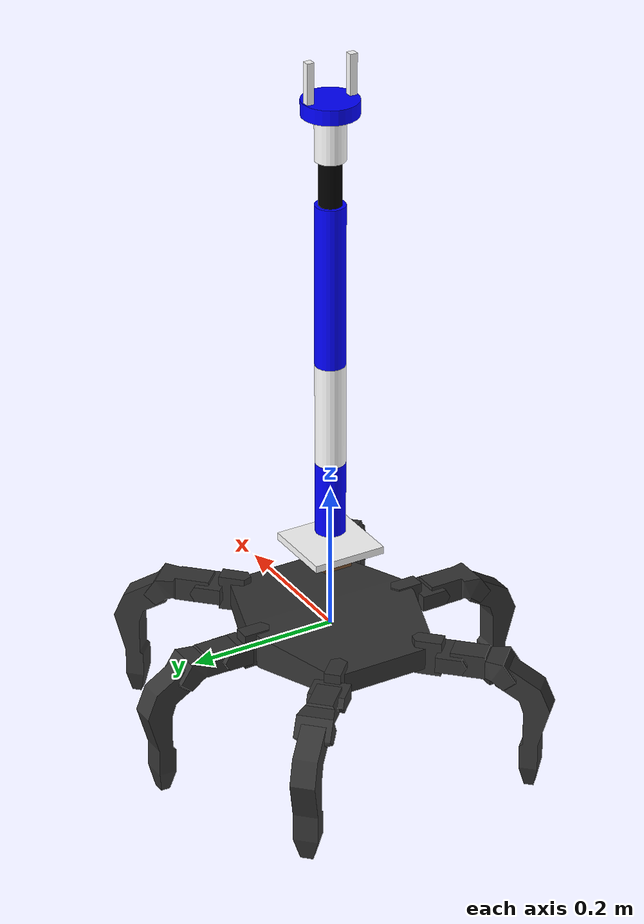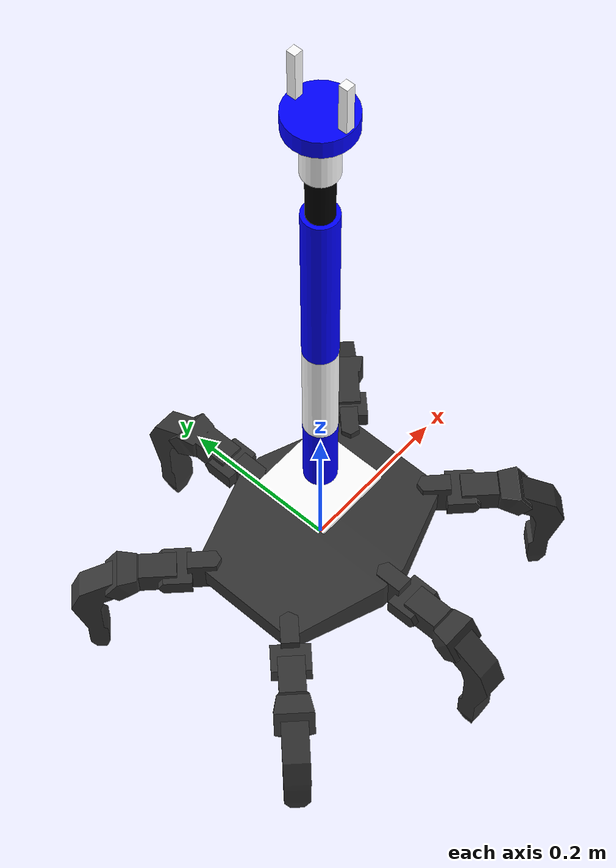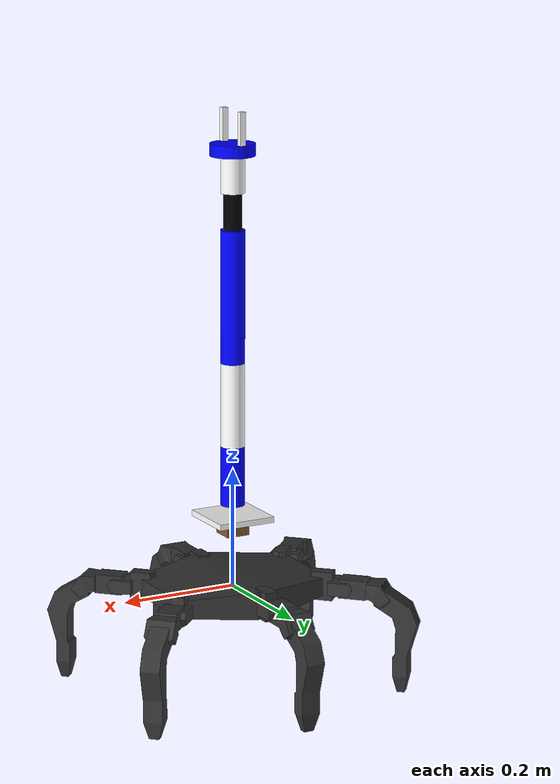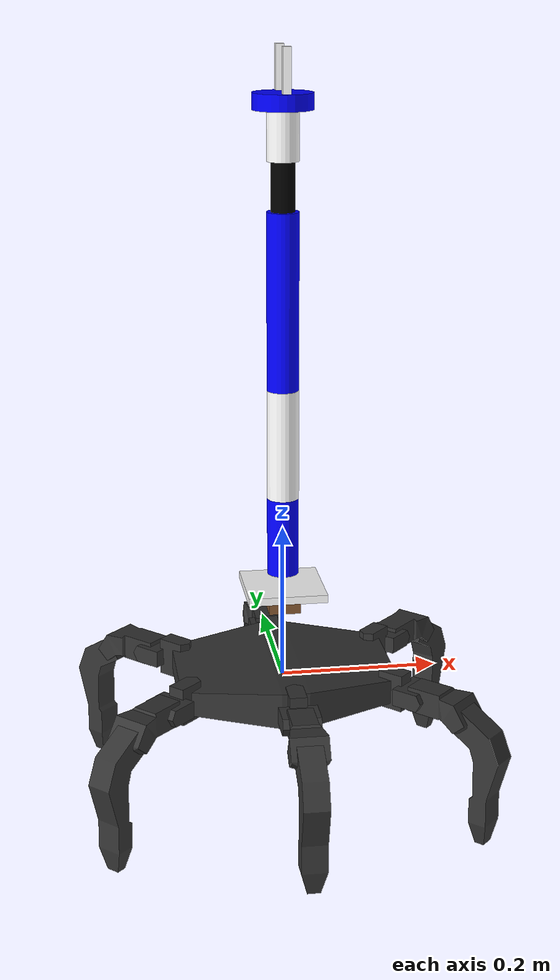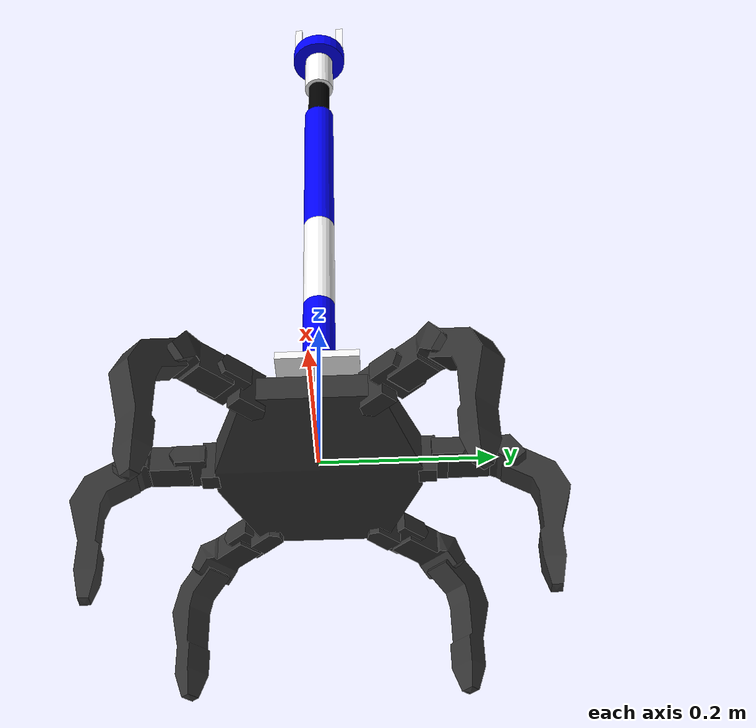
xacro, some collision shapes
<?xml version="1.0"?>
<robot name="phantomx" xmlns:xacro="http://www.ros.org/wiki/xacro">

	<xacro:include filename="$(find phantomx_description)/urdf/phantomx.xacro" />
	<xacro:include filename="$(find phantomx_description)/urdf/arm.xacro" />
    <xacro:include filename="$(find phantomx_description)/urdf/kinect.xacro" />

	<xacro:property name="kinect_offset_x" value="0" />
	<xacro:property name="kinect_offset_y" value="0" />
	<xacro:property name="kinect_offset_z" value="0.05" />

  <joint name="kinect_frame_joint" type="fixed">
	  <origin xyz="${kinect_offset_x} ${kinect_offset_y} ${kinect_offset_z}" rpy="0 0 0" />
	  <parent link="MP_BODY"/>
	  <child link="camera_link"/>
	</joint>
	<xacro:kinect_camera prefix="camera"/>

	<joint name="arm_base" type="fixed">
        <parent link="phantomx_base_link"/>
        <child link="base_link"/>
        <origin xyz="0 0 0.12" rpy="0 0 0" />
  </joint>

    <gazebo>

    <plugin filename="libgazebo_ros_control.so" name="gazebo_ros_control">
      <robotNamespace>/phantomx</robotNamespace>
    </plugin>

    <plugin name="p3d_base_controller" filename="libgazebo_ros_p3d.so">
    <alwaysOn>true</alwaysOn>
    <updateRate>50.0</updateRate>
    <bodyName>MP_BODY</bodyName>
    <topicName>odom</topicName>
    <gaussianNoise>0.0</gaussianNoise>
    <frameName>world</frameName>
    <xyzOffsets>0 0 0</xyzOffsets>
    <rpyOffsets>0 0 0</rpyOffsets>
    </plugin>

    </gazebo>

</robot>

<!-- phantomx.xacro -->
<robot name="PhantomX"  xmlns:xacro="http://www.ros.org/wiki/xacro">

  <xacro:include filename="$(find phantomx_description)/urdf/phantomx_urdf.xacro" />

  <link name="phantomx_base_link"/>

    <xacro:phantomx parent="phantomx_base_link">
        <origin xyz="0 0 0" rpy="0 0 0" />
    </xacro:phantomx>

</robot>

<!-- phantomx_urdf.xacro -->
<robot xmlns:xacro="http://www.ros.org/wiki/xacro">

    <xacro:property name="connect_offset" value="0.02633"/>
    <xacro:property name="thigh_offset_y" value="-0.0645"/>
    <xacro:property name="thigh_offset_z" value="-0.0145"/>

    <xacro:macro name="phantomx" params="parent *origin">

        <joint name="j_phantomx_attachment" type="fixed">
            <parent link="${parent}"/>
            <child link="MP_BODY"/>
            <insert_block name="origin"/>
        </joint>

        <link name="MP_BODY">
            <inertial>
                <origin xyz="0 0 0"/>
                <mass value="0.97559947"/>
                <inertia ixx="3.1081800" ixy="-0.25460189" ixz="2.0318174" iyy="6.3787776" iyz="0.16417863"
                         izz="5.3316425"/>
            </inertial>
            <visual>
                <origin xyz="0 0 0" rpy="0 0 0"/>
                <geometry>
                    <mesh filename="package://phantomx_description/meshes/body.STL" scale="1 1 1"/>
                </geometry>
                <material name="Grey">
                    <color rgba="0.20 0.20 0.20 1.0"/>
                </material>
            </visual>
            <collision>
                <origin xyz="0 0 0" rpy="0 0 0"/>
                <geometry>
                    <mesh filename="package://phantomx_description/meshes/body_coll.STL" scale="1 1 1"/>
                </geometry>

            </collision>
        </link>

        <gazebo reference="MP_BODY">
            <material>Gazebo/Grey</material>
        </gazebo>

        <xacro:leg_l xyz="0.1248 -0.06164  0.001116" rpy="0 4.7123 0.7853981633974483" suffix="rf"/>
        <xacro:leg_l xyz="0 -0.1034  0.001116" rpy="0 4.7123 0" suffix="rm"/>
        <xacro:leg_l xyz="-0.1248 -0.06164  0.001116" rpy="0 4.7123 -0.7853981633974483" suffix="rr"/>

        <xacro:leg_l xyz="0.1248 0.06164  0.001116" rpy="0 4.7123 2.356194490192345" suffix="lf"/>
        <xacro:leg_l xyz="0 0.1034  0.001116" rpy="0 4.7123 3.14159" suffix="lm"/>
        <xacro:leg_l xyz="-0.1248 0.06164  0.001116" rpy="0 4.7123 3.9269908169872414" suffix="lr"/>

    </xacro:macro>

    <xacro:macro name="leg_l" params="xyz rpy suffix">

        <link name="c1_${suffix}">
            <inertial>
                <origin xyz="0 -${connect_offset} 0" rpy="0 0 0"/>
                <mass value="0.324357719"/>
                <inertia ixx="0.0051411124" ixy="-0.00057530255" ixz="-0.000024729049" iyy="0.0081915737"
                         iyz="-0.000019223094" izz="0.0011379812"/>
            </inertial>
            <visual>
                <origin xyz="0 -0.0252 0" rpy="0 0 0"/>
                <geometry>
                    <!--box size="0.045 0.022 0.0325" /-->
                    <mesh filename="package://phantomx_description/meshes/connect.STL" scale="1 1 1"/>
                </geometry>
                <material name="Grey">
                    <color rgba="0.20 0.20 0.20 1.0"/>
                </material>
            </visual>
            <collision>
                <origin xyz="0 -${connect_offset} 0" rpy="0 0 0"/>
                <geometry>
                    <mesh filename="package://phantomx_description/meshes/connect_coll.STL" scale="1 1 1"/>
                </geometry>
            </collision>
        </link>

        <gazebo reference="c1_${suffix}">
            <dampingFactor>0.0005</dampingFactor>
        </gazebo>

        <link name="c2_${suffix}">
            <inertial>
                <origin xyz="0 -${connect_offset} 0" rpy="0 0 0"/>
                <mass value="0.324357719"/>
                <inertia ixx="0.0051411124" ixy="-0.00057530255" ixz="-0.000024729049" iyy="0.0081915737"
                         iyz="-0.000019223094" izz="0.0011379812"/>
            </inertial>
            <visual>
                <origin xyz="0 -0.0252 0" rpy="0 0 0"/>
                <geometry>
                    <!--box size="0.045 0.022 0.0325" /-->
                    <mesh filename="package://phantomx_description/meshes/connect.STL" scale="1 1 1"/>
                </geometry>
                <material name="Grey">
                    <color rgba="0.20 0.20 0.20 1.0"/>
                </material>
            </visual>
            <collision>
                <origin xyz="0 -${connect_offset} 0" rpy="0 0 0"/>
                <geometry>
                    <mesh filename="package://phantomx_description/meshes/connect_coll.STL" scale="1 1 1"/>
                </geometry>
            </collision>
        </link>

        <gazebo reference="c2_${suffix}">
            <dampingFactor>0.0005</dampingFactor>
        </gazebo>

        <link name="thigh_${suffix}">
            <inertial>
                <origin xyz="0 0 0" rpy="0 0 0"/>
                <mass value="0.324357719"/>
                <inertia ixx="0.0051411124" ixy="-0.00057530255" ixz="-0.000024729049" iyy="0.0081915737"
                         iyz="-0.000019223094" izz="0.0011379812"/>
            </inertial>
            <visual>
                <origin xyz="0 0 0" rpy="0 0 0"/>
                <geometry>
                    <mesh filename="package://phantomx_description/meshes/thigh_l.STL" scale="1 1 1"/>
                </geometry>
                <material name="Grey">
                    <color rgba="0.20 0.20 0.20 1.0"/>
                </material>
            </visual>
            <collision>
                <origin xyz="0 0 0" rpy="0 0 0"/>
                <geometry>
                    <mesh filename="package://phantomx_description/meshes/thigh_l_coll.STL" scale="1 1 1"/>
                </geometry>
            </collision>
        </link>

        <gazebo reference="thigh_${suffix}">
            <dampingFactor>0.0005</dampingFactor>
        </gazebo>

        <link name="tibia_${suffix}">
            <inertial>
                <origin xyz="0 0 0" rpy="0 0 0"/>
                <mass value="0.324357719"/>
                <inertia ixx="0.0051411124" ixy="-0.00057530255" ixz="-0.000024729049" iyy="0.0081915737"
                         iyz="-0.000019223094" izz="0.0011379812"/>
            </inertial>
            <visual>
                <origin xyz="0 0 0" rpy="0 0 0"/>
                <geometry>
                    <mesh filename="package://phantomx_description/meshes/tibia_l.STL" scale="1 1 1"/>
                </geometry>
                <material name="Grey">
                    <color rgba="0.20 0.20 0.20 1.0"/>
                </material>
            </visual>
            <collision>
                <origin xyz="0 0 0" rpy="0 0 0"/>
                <geometry>
                    <mesh filename="package://phantomx_description/meshes/tibia_l_coll.STL" scale="1 1 1"/>
                </geometry>
            </collision>
        </link>

        <gazebo reference="tibia_${suffix}">
            <mu1>50.0</mu1>
            <mu2>50.0</mu2>
            <fdir1>0.000000 0.000000 0.000000</fdir1>
            <kp>500000.0</kp>
            <kd>10.0</kd>
            <maxVel>0.00</maxVel>
            <minDepth>0.001</minDepth>
            <dampingFactor>0.0005</dampingFactor>
            <selfCollide>1</selfCollide>
        </gazebo>

        <joint name="j_c1_${suffix}" type="revolute">
            <parent link="MP_BODY"/>
            <child link="c1_${suffix}"/>
            <origin xyz="${xyz}" rpy="${rpy}"/>
            <axis xyz="1 0 0"/>
            <limit effort="2.8" velocity="5.6548668" lower="-2.6179939" upper="2.6179939"/>
        </joint>

        <joint name="j_c2_${suffix}" type="fixed">
            <parent link="c1_${suffix}"/>
            <child link="c2_${suffix}"/>
            <origin xyz="0 -0.054 0" rpy="0 1.5704 3.14159"/>
        </joint>

        <joint name="j_thigh_${suffix}" type="revolute">
            <parent link="c2_${suffix}"/>
            <child link="thigh_${suffix}"/>
            <origin xyz="0 0 0" rpy=" 0 3.14159 3.14159"/>
            <axis xyz="1 0 0"/>
            <limit effort="2.8" velocity="5.6548668" lower="-2.6179939" upper="2.6179939"/>
        </joint>

        <joint name="j_tibia_${suffix}" type="revolute">
            <parent link="thigh_${suffix}"/>
            <child link="tibia_${suffix}"/>
            <origin xyz="0 ${thigh_offset_y} ${thigh_offset_z}" rpy="-1.5707 0 3.14159"/>
            <axis xyz="1 0 0"/>
            <limit effort="2.8" velocity="5.6548668" lower="-2.6179939" upper="2.6179939"/>
        </joint>

        <transmission name="t_c1_${suffix}">
            <type>transmission_interface/SimpleTransmission</type>
            <joint name="j_c1_${suffix}">
                <hardwareInterface>hardware_interface/EffortJointInterface</hardwareInterface>
            </joint>
            <actuator name="m_c1_${suffix}">
                <hardwareInterface>hardware_interface/EffortJointInterface</hardwareInterface>
                <mechanicalReduction>1</mechanicalReduction>
            </actuator>
        </transmission>

        <transmission name="t_thigh_${suffix}">
            <type>transmission_interface/SimpleTransmission</type>
            <joint name="j_thigh_${suffix}">
                <hardwareInterface>hardware_interface/EffortJointInterface</hardwareInterface>
            </joint>
            <actuator name="m_thigh_${suffix}">
                <hardwareInterface>hardware_interface/EffortJointInterface</hardwareInterface>
                <mechanicalReduction>1</mechanicalReduction>
            </actuator>
        </transmission>

        <transmission name="t_tibia_${suffix}">
            <type>transmission_interface/SimpleTransmission</type>
            <joint name="j_tibia_${suffix}">
                <hardwareInterface>hardware_interface/EffortJointInterface</hardwareInterface>
            </joint>
            <actuator name="m_tibia_${suffix}">
                <hardwareInterface>hardware_interface/EffortJointInterface</hardwareInterface>
                <mechanicalReduction>1</mechanicalReduction>
            </actuator>
        </transmission>

        <gazebo reference="c1_${suffix}">
            <material>Gazebo/Grey</material>
        </gazebo>

        <gazebo reference="c2_${suffix}">
            <material>Gazebo/Grey</material>
        </gazebo>

        <gazebo reference="thigh_${suffix}">
            <material>Gazebo/Grey</material>
        </gazebo>

        <gazebo reference="tibia_${suffix}">
            <material>Gazebo/Grey</material>
        </gazebo>

    </xacro:macro>

</robot>

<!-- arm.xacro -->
<robot name="arm" xmlns:xacro="http://ros.org/wiki/xacro">

    <!-- Defining the colors used in this robot -->
    <material name="Black">
        <color rgba="0 0 0 1"/>
    </material>

    <material name="White">
        <color rgba="1 1 1 1"/>
    </material>

    <material name="Blue">
        <color rgba="0 0 1 1"/>
    </material>

    <material name="Red">
        <color rgba="1 0 0 1"/>
    </material>

    <!-- Constants -->
    <xacro:property name="M_PI" value="3.14159"/>

    <!-- link1 properties -->
    <xacro:property name="link1_width" value="0.02" />
    <xacro:property name="link1_len" value="0.10" />

    <!-- link2 properties -->
    <xacro:property name="link2_width" value="0.02" />
    <xacro:property name="link2_len" value="0.14" />

    <!-- link3 properties -->
    <xacro:property name="link3_width" value="0.02" />
    <xacro:property name="link3_len" value="0.22" />

    <!-- link4 properties -->
    <xacro:property name="link4_width" value="0.015" />
    <xacro:property name="link4_len" value="0.06" />

    <!-- link5 properties -->
    <xacro:property name="link5_width" value="0.02" />
    <xacro:property name="link5_len" value="0.06" />

    <!-- link6 properties -->
    <xacro:property name="link6_width" value="0.037" />
    <xacro:property name="link6_len" value="0.02" />

    <!-- Left gripper -->
    <xacro:property name="left_gripper_len" value="0.068" />
    <xacro:property name="left_gripper_width" value="0.01" />
    <xacro:property name="left_gripper_height" value="0.01" />

    <!-- Right gripper -->
    <xacro:property name="right_gripper_len" value="0.068" />
    <xacro:property name="right_gripper_width" value="0.01" />
    <xacro:property name="right_gripper_height" value="0.01" />

    <!-- Gripper frame -->
    <xacro:property name="grasp_frame_radius" value="0.001" />

    <!-- Inertial matrix -->
    <xacro:macro name="inertial_matrix" params="mass">
        <inertial>
            <mass value="${mass}" />
            <inertia ixx="1.0" ixy="0.0" ixz="0.0" iyy="0.5" iyz="0.0" izz="1.0" />
        </inertial>
    </xacro:macro>

    <!-- ///////////////////////////////////////   bottom_joint   ////////////////////////////////////////// -->
    <joint name="bottom_joint" type="fixed">
        <origin xyz="0 0 0" rpy="0 0 0" />
        <parent link="base_link"/>
        <child link="bottom_link"/>
    </joint>
    <link name="bottom_link">
        <visual>
              <origin xyz=" 0 0 -0.02"  rpy="0 0 0"/>
                  <geometry>
                       <box size="0.04 0.04 0.02" />
                  </geometry>
              <material name="Brown" />
        </visual>
        <collision>
            <origin xyz=" 0 0 -0.02"  rpy="0 0 0"/>
            <geometry>
                <box size="0.06 0.06 0.02" />
            </geometry>
        </collision>
        <xacro:inertial_matrix mass="0.02"/>
    </link>

    <!-- /////////////////////////////////////   BASE LINK    ////////////////////////////////////////////// -->
    <link name="base_link">
        <visual>
            <origin xyz="0 0 0" rpy="0 0 0" />
            <geometry>
                <box size="0.1 0.1 0.01" />
            </geometry>
            <material name="White" />
        </visual>
        <collision>
            <origin xyz="0 0 0" rpy="0 0 0" />
            <geometry>
                <box size="0.05 0.05 0.01" />
            </geometry>
        </collision>
        <xacro:inertial_matrix mass="0.02"/>
    </link>

    <joint name="joint1" type="revolute">
        <parent link="base_link"/>
        <child link="link1"/>
        <origin xyz="0 0 0.02" rpy="0 ${M_PI/2} 0" />
        <axis xyz="-1 0 0" />
        <limit effort="300" velocity="1" lower="-2.96" upper="2.96"/>
        <dynamics damping="50" friction="1"/>
    </joint>

    <!-- /////////////////////////////////////   LINK1  ////////////////////////////////////////////// -->
    <link name="link1" >
        <visual>
            <origin xyz="-${link1_len/2} 0 0" rpy="0 ${M_PI/2} 0" />
            <geometry>
                <cylinder radius="${link1_width}" length="${link1_len}"/>
            </geometry>
            <material name="Blue" />
        </visual>
        <collision>
            <origin xyz="-${link1_len/2} 0 0" rpy="0 ${M_PI/2} 0" />
            <geometry>
                <cylinder radius="${link1_width}" length="${link1_len}"/>
            </geometry>
        </collision>
        <xacro:inertial_matrix mass="0.02"/>
    </link>

    <joint name="joint2" type="revolute">
        <parent link="link1"/>
        <child link="link2"/>
        <origin xyz="-${link1_len} 0 0.0" rpy="-${M_PI/2} 0 ${M_PI/2}" />
        <axis xyz="1 0 0" />
        <limit effort="300" velocity="1" lower="-2.35" upper="2.35" />
        <dynamics damping="50" friction="1"/>
    </joint>

    <!-- ///////////////////////////////////////   LINK2  ////////////////////////////////////////////// -->
    <link name="link2" >
        <visual>
            <origin xyz="0 0 ${link2_len/2}" rpy="0 0 0" />
            <geometry>
                <cylinder radius="${link2_width}" length="${link2_len}"/>
            </geometry>
            <material name="White" />
        </visual>

        <collision>
            <origin xyz="0 0 ${link2_len/2}" rpy="0 0 0" />
            <geometry>
                <cylinder radius="${link2_width}" length="${link2_len}"/>
            </geometry>
        </collision>
        <xacro:inertial_matrix mass="0.02"/>
    </link>

    <joint name="joint3" type="revolute">
        <parent link="link2"/>
        <child link="link3"/>
        <origin xyz="0 0 ${link2_len}" rpy="0 ${M_PI} 0" />
        <axis xyz="-1 0 0" />
        <limit effort="300" velocity="1" lower="-2.62" upper="2.62" />
        <dynamics damping="50" friction="1"/>
    </joint>

    <!-- /////////////////////////////////   LINK3  ///////////////////////////////////////////////////// -->
    <link name="link3" >
        <visual>
            <origin xyz="0 0 -${link3_len/2}" rpy="0 0 0" />
            <geometry>
                <cylinder radius="${link3_width}" length="${link3_len}"/>
            </geometry>
            <material name="Blue" />
        </visual>
        <collision>
            <origin xyz="0 0 -${link3_len/2}" rpy="0 0 0" />
            <geometry>
                <cylinder radius="${link3_width}" length="${link3_len}"/>
            </geometry>
        </collision>
        <xacro:inertial_matrix mass="0.02"/>
    </link>

    <joint name="joint4" type="revolute">
        <parent link="link3"/>
        <child link="link4"/>
        <origin xyz="0.0 0.0 -${link3_len}" rpy="0 ${M_PI/2} ${M_PI}" />
        <axis xyz="1 0 0" />
        <limit effort="300" velocity="1" lower="-2.62" upper="2.62" />
        <dynamics damping="50" friction="1"/>
    </joint>

    <!-- ///////////////////////////////////   LINK4  //////////////////////////////////////////////// -->
    <link name="link4" >
        <visual>
            <origin xyz="${link4_len/2} 0 0" rpy="0 ${M_PI/2} 0" />
            <geometry>
                <cylinder radius="${link4_width}" length="${link4_len}"/>
            </geometry>
            <material name="Black" />
        </visual>
        <collision>
            <origin xyz="${link4_len/2} 0 0" rpy="0 ${M_PI/2} 0" />
            <geometry>
                <cylinder radius="${link4_width}" length="${link4_len}"/>
            </geometry>
        </collision>
        <xacro:inertial_matrix mass="0.02"/>
    </link>

    <joint name="joint5" type="revolute">
        <parent link="link4"/>
        <child link="link5"/>
        <origin xyz="${link4_len} 0.0 0.0" rpy="0 ${M_PI/2} 0" />
        <axis xyz="1 0 0" />
        <limit effort="300" velocity="1" lower="-2.62" upper="2.62" />
        <dynamics damping="50" friction="1"/>
    </joint>

    <!-- //////////////////////////////////   LINK5  ///////////////////////////////////////////////// -->
    <link name="link5">
        <visual>
            <origin xyz="0 0 ${link4_len/2}" rpy="0 0 0" />
            <geometry>
                <cylinder radius="${link5_width}" length="${link5_len}"/>
            </geometry>
            <material name="White" />
        </visual>
        <collision>
            <origin xyz="0 0 ${link4_len/2} " rpy="0 0 0" />
            <geometry>
                <cylinder radius="${link5_width}" length="${link5_len}"/>
            </geometry>
        </collision>
        <xacro:inertial_matrix mass="0.02"/>
    </link>

    <joint name="joint6" type="revolute">
        <parent link="link5"/>
        <child link="link6"/>
        <origin xyz="0 0 ${link4_len}" rpy="${1.5*M_PI} -${M_PI/2} 0" />
        <axis xyz="1 0 0" />
        <limit effort="300" velocity="1" lower="-6.28" upper="6.28" />
        <dynamics damping="50" friction="1"/>
    </joint>

    <!-- ////////////////////////////////   LINK6  ///////////////////////////////////////////////// -->
    <link name="link6">
        <visual>
            <origin xyz="${link6_len/2} 0 0 " rpy="0 ${M_PI/2} 0" />
            <geometry>
                <cylinder radius="${link6_width}" length="${link6_len}"/>
            </geometry>
            <material name="Blue" />
        </visual>
        <collision>
            <origin xyz="${link6_len/2} 0 0" rpy="0 ${M_PI/2} 0" />
            <geometry>
                <cylinder radius="${link6_width}" length="${link6_len}"/>
            </geometry>
        </collision>
        <xacro:inertial_matrix mass="0.02"/>
    </link>

    <joint name="finger_joint1" type="prismatic">
        <parent link="link6"/>
        <child link="gripper_finger_link1"/>
        <origin xyz="0.0 0 0" />
        <axis xyz="0 1 0" />
        <limit effort="100" lower="0" upper="0.06" velocity="1.0"/>
        <dynamics damping="50" friction="1"/>
    </joint>

    <!-- //////////////////////////////////////   gripper   ////////////////////////////////////////////// -->
    <!-- LEFT GRIPPER AFT LINK -->
    <link name="gripper_finger_link1">
        <visual>
            <origin xyz="0.04 -0.03 0"/>
            <geometry>
                <box size="${left_gripper_len} ${left_gripper_width} ${left_gripper_height}" />
            </geometry>
            <material name="White" />
        </visual>
        <xacro:inertial_matrix mass="0.02"/>
    </link>

    <joint name="finger_joint2" type="fixed">
        <parent link="link6"/>
        <child link="gripper_finger_link2"/>
        <origin xyz="0.0 0 0" />
    </joint>

    <!-- RIGHT GRIPPER AFT LINK -->
    <link name="gripper_finger_link2">
        <visual>
            <origin xyz="0.04 0.03 0"/>
            <geometry>
                <box size="${right_gripper_len} ${right_gripper_width} ${right_gripper_height}" />
            </geometry>
            <material name="White" />
        </visual>
        <xacro:inertial_matrix mass="0.02"/>
    </link>

    <!-- Grasping frame -->
    <link name="grasping_frame"/>

    <joint name="grasping_frame_joint" type="fixed">
      <parent link="link6"/>
      <child link="grasping_frame"/>
      <origin xyz="0.08 0 0" rpy="0 0 0"/>
    </joint>

    <!-- /////////////////////////////////   Gazebo   ////////////////////////////////////// -->
    <gazebo reference="bottom_link">
        <material>Gazebo/White</material>
    </gazebo>
    <gazebo reference="base_link">
        <material>Gazebo/White</material>
    </gazebo>
    <gazebo reference="link1">
        <material>Gazebo/Blue</material>
    </gazebo>
    <gazebo reference="link2">
        <material>Gazebo/White</material>
    </gazebo>
    <gazebo reference="link3">
        <material>Gazebo/Blue</material>
    </gazebo>
    <gazebo reference="link4">
        <material>Gazebo/Black</material>
    </gazebo>
    <gazebo reference="link5">
        <material>Gazebo/White</material>
    </gazebo>
    <gazebo reference="link6">
        <material>Gazebo/Blue</material>
    </gazebo>
    <gazebo reference="gripper_finger_link1">
        <material>Gazebo/White</material>
    </gazebo>
    <gazebo reference="gripper_finger_link2">
        <material>Gazebo/White</material>
    </gazebo>

    <!-- Transmissions for ROS Control -->
    <xacro:macro name="transmission_block" params="joint_name">
        <transmission name="tran1">
            <type>transmission_interface/SimpleTransmission</type>
            <joint name="${joint_name}">
                <hardwareInterface>hardware_interface/PositionJointInterface</hardwareInterface>
            </joint>
            <actuator name="motor1">
                <hardwareInterface>hardware_interface/PositionJointInterface</hardwareInterface>
                <mechanicalReduction>1</mechanicalReduction>
            </actuator>
        </transmission>
    </xacro:macro>

    <xacro:transmission_block joint_name="joint1"/>
    <xacro:transmission_block joint_name="joint2"/>
    <xacro:transmission_block joint_name="joint3"/>
    <xacro:transmission_block joint_name="joint4"/>
    <xacro:transmission_block joint_name="joint5"/>
    <xacro:transmission_block joint_name="joint6"/>
    <xacro:transmission_block joint_name="finger_joint1"/>

    <!-- ros_control plugin -->
    <gazebo>
        <plugin name="gazebo_ros_control" filename="libgazebo_ros_control.so">
            <robotNamespace>/arm</robotNamespace>
        </plugin>
    </gazebo>

</robot>

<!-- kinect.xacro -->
<robot xmlns:xacro="http://www.ros.org/wiki/xacro" name="kinect_camera">

    <xacro:macro name="kinect_camera" params="prefix:=camera">
        <!-- Create kinect reference frame -->
        <!-- Add mesh for kinect -->
        <link name="${prefix}_link">
            <origin xyz="0 0 0" rpy="0 0 0"/>
            <visual>
                <origin xyz="0 0 0" rpy="0 0 ${M_PI/2}"/>
                <geometry>
                    <mesh filename="package://phantomx_description/meshes/kinect.dae" />
                </geometry>
            </visual>
            <collision>
                <origin xyz="0 0 0" rpy="0 0 0"/>
                <geometry>
                    <box size="0 0 0"/>
                </geometry>
            </collision>
        </link>

        <joint name="${prefix}_optical_joint" type="fixed">
            <origin xyz="0 0 0" rpy="-1.5708 0 -1.5708"/>
            <parent link="${prefix}_link"/>
            <child link="${prefix}_frame_optical"/>
        </joint>

        <link name="${prefix}_frame_optical"/>

        <gazebo reference="${prefix}_link">
            <sensor type="depth" name="${prefix}">
                <always_on>true</always_on>
                <update_rate>20.0</update_rate>
                <camera>
                    <horizontal_fov>${90.0*M_PI/180.0}</horizontal_fov>
                    <image>
                        <format>R8G8B8</format>
                        <width>640</width>
                        <height>480</height>
                    </image>
                    <clip>
                        <near>0.01</near>
                        <far>8.0</far>
                    </clip>
                </camera>
                <plugin name="kinect_${prefix}_controller" filename="libgazebo_ros_openni_kinect.so">
                    <cameraName>${prefix}</cameraName>
                    <alwaysOn>true</alwaysOn>
                    <updateRate>10</updateRate>
                    <imageTopicName>rgb/image_raw</imageTopicName>
                    <depthImageTopicName>depth/image_raw</depthImageTopicName>
                    <pointCloudTopicName>depth/points</pointCloudTopicName>
                    <cameraInfoTopicName>rgb/camera_info</cameraInfoTopicName>
                    <depthImageCameraInfoTopicName>depth/camera_info</depthImageCameraInfoTopicName>
                    <frameName>${prefix}_frame_optical</frameName>
                    <baseline>0.1</baseline>
                    <distortion_k1>0.0</distortion_k1>
                    <distortion_k2>0.0</distortion_k2>
                    <distortion_k3>0.0</distortion_k3>
                    <distortion_t1>0.0</distortion_t1>
                    <distortion_t2>0.0</distortion_t2>
                    <pointCloudCutoff>0.4</pointCloudCutoff>
                </plugin>
            </sensor>
        </gazebo>

    </xacro:macro>
</robot>
